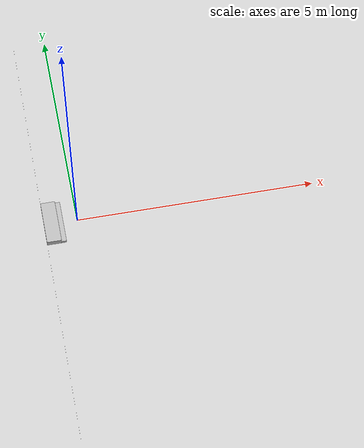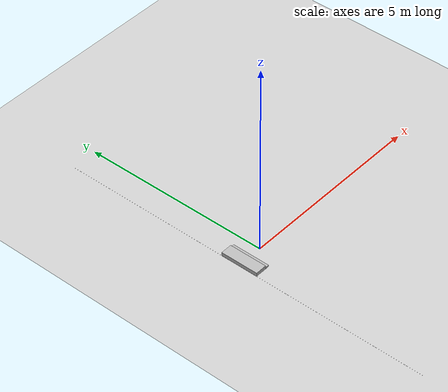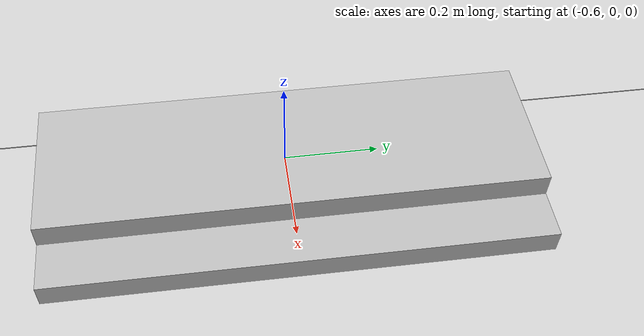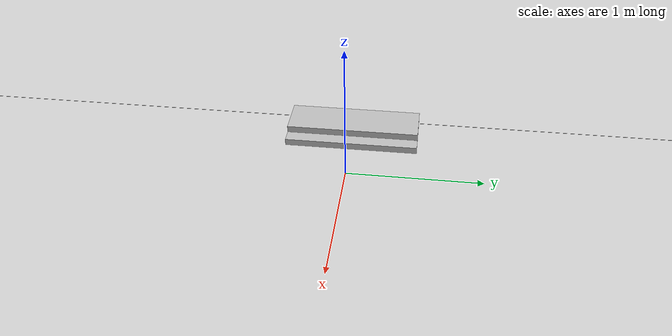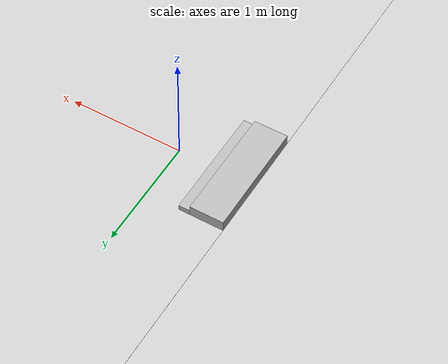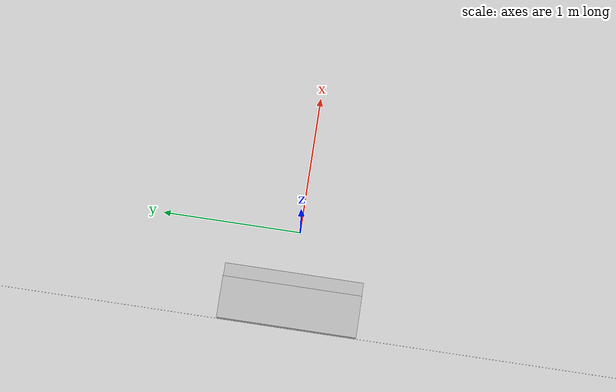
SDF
<?xml version="1.0"?>
<sdf version="1.6">
	<world name="myworld">
		<include>
			<uri>model://sun</uri>
		</include>
		<include>
			<uri>model://ground_plane</uri>
		</include>
		<physics type='quick'>
			<real_time_update_rate>0.000000</real_time_update_rate>
			<max_step_size>0.0003</max_step_size>
		</physics>
		<model name ='step1'>
			<pose>-0.35 0 0.025 0 0 0</pose>
			<link name ='0.1x1x0.05'>
				<pose>0 0 0 0 0 0</pose>
				<collision name ='collision'>
					<geometry>
						<box><size>0.1 1 0.05</size></box>
					</geometry>
				</collision>
				<visual name ='visual'>
					<geometry>
						<box><size>0.1 1 0.05</size></box>
					</geometry>
				</visual>
				<inertial>
					<mass value="1000"/>
				</inertial>
			</link>
		</model>
		<model name = 'step2'>
			<pose>-0.55 0 0.05 0 0 0</pose>
			<link name ='0.3x1x0.1'>
				<pose>0 0 0 0 0 0</pose>
				<collision name ='collision'>
					<geometry>
						<box><size>0.3 1 0.1</size></box>
					</geometry>
				</collision>
				<visual name ='visual'>
					<geometry>
						<box><size>0.3 1 0.1</size></box>
					</geometry>
				</visual>
				<inertial>
					<mass value="1000"/>
				</inertial>
			</link>
			<joint name="f1" type="fixed">
				<parent link="base"/>
				<child link="top"/>
			</joint>
		</model>
		<model name = 'goal'>
			<pose>-0.7 0 0.001 0 0 0</pose>
			<link name ='goal'>
				<pose>0 0 0 0 0 0</pose>
				<collision name ='collision'>
					<geometry>
						<box><size>0.001 10 0.002</size></box>
					</geometry>
				</collision>
				<visual name ='visual'>
					<geometry>
						<box><size>0.001 10 0.002</size></box>
					</geometry>
				</visual>
				<inertial>
					<mass value="1000"/>
				</inertial>
			</link>
			<joint name="f1" type="fixed">
				<parent link="base"/>
				<child link="top"/>
			</joint>
		</model>
	</world>
</sdf>
